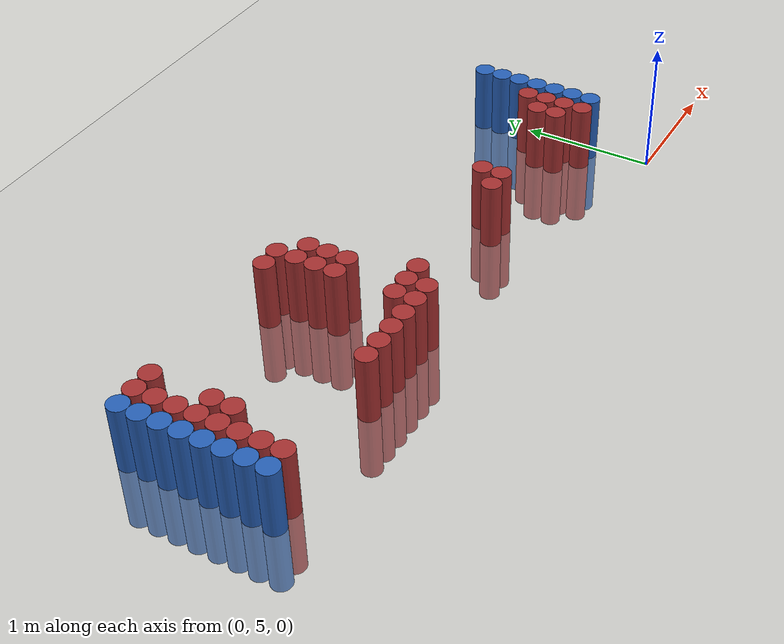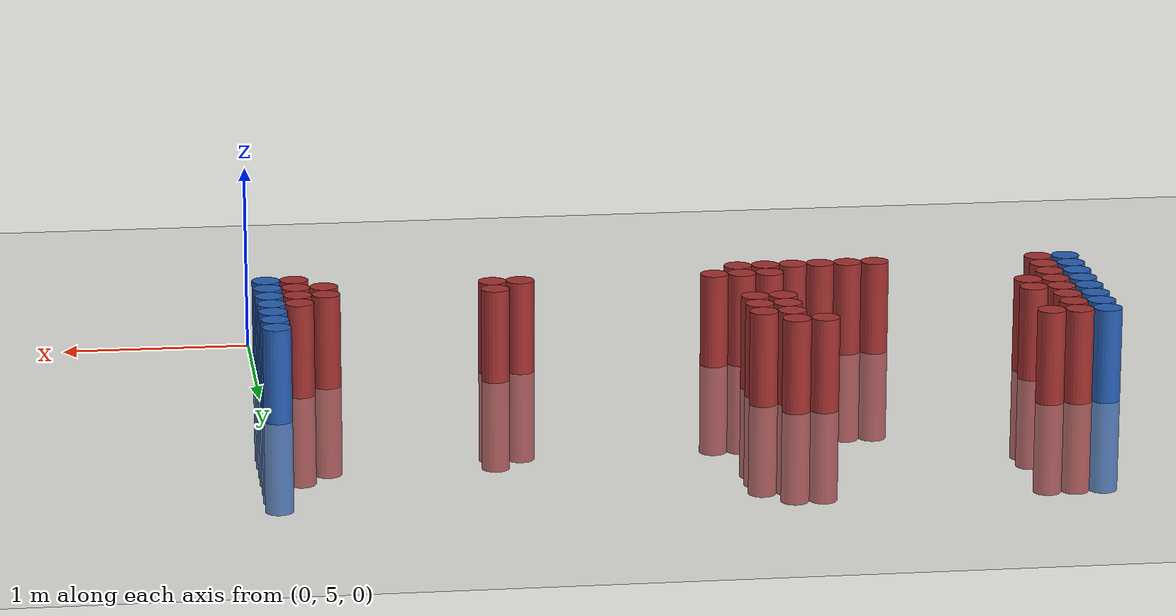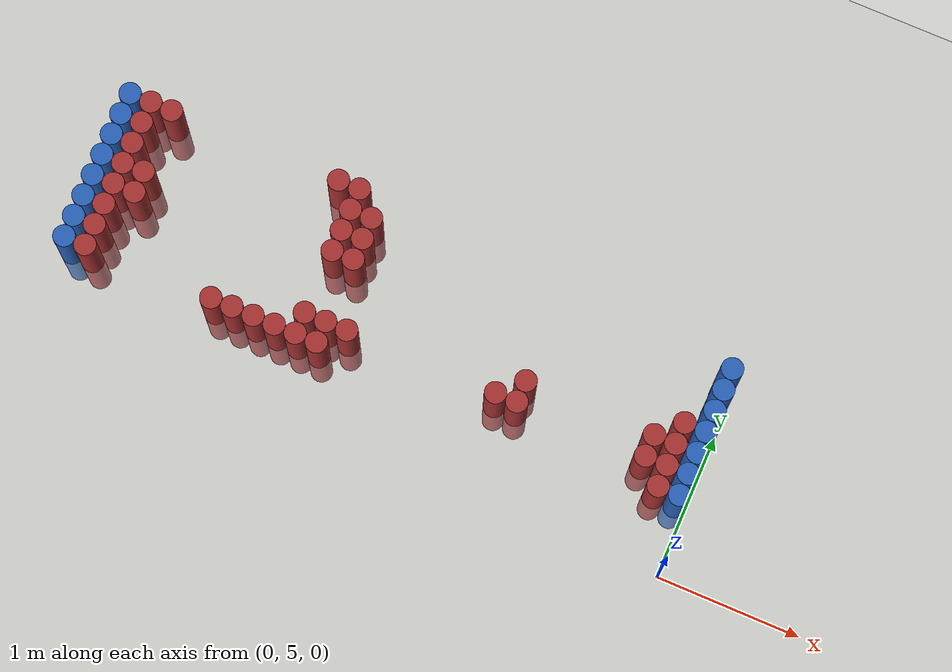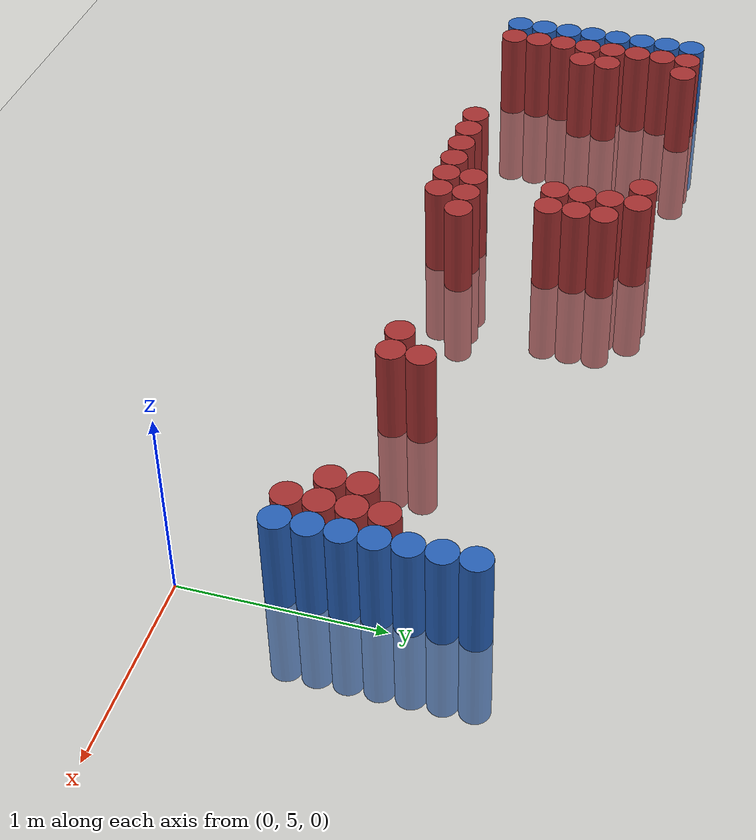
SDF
<sdf version="1.6">
 <world name="default">
  <model name="ground_plane">
   <static>1</static>
   <link name="link">
    <collision name="collision">
     <geometry><plane><normal>0 0 1</normal><size>100 100</size></plane></geometry>
     <surface><friction><ode><mu>100</mu><mu2>50</mu2></ode></friction></surface>
    </collision>
    <visual name="visual">
     <cast_shadows>0</cast_shadows>
     <geometry><plane><normal>0 0 1</normal><size>100 100</size></plane></geometry>
     <material>
      <script><uri>file://media/materials/scripts/gazebo.material</uri><name>Gazebo/Grey</name></script>
     </material>
    </visual>
   </link>
  </model>
  <model name="unit_cylinder_98">
   <static>1</static>
   <pose>-4.425000 5.475000 0.000000 0.000000 0.000000 0.000000</pose>
   <link name="link">
    <inertial>
     <mass>1</mass>
     <inertia><ixx>0.145833</ixx><ixy>0</ixy><ixz>0</ixz><iyy>0.145833</iyy><iyz>0</iyz><izz>0.125</izz></inertia>
    </inertial>
    <collision name="collision">
     <geometry><cylinder><radius>0.075000</radius><length>1</length></cylinder></geometry>
    </collision>
    <visual name="visual">
     <geometry><cylinder><radius>0.075000</radius><length>1</length></cylinder></geometry>
     <material>
      <ambient>0.152000 0.379000 0.720000 1</ambient>
      <diffuse>0.152000 0.379000 0.720000 1</diffuse>
     </material>
     <material>
      <script><name>Gazebo/Grey</name><uri>file://media/materials/scripts/gazebo.material</uri></script>
     </material>
    </visual>
   </link>
  </model>
  <model name="unit_cylinder_99">
   <static>1</static>
   <pose>-4.425000 5.625000 0.000000 0.000000 0.000000 0.000000</pose>
   <link name="link">
    <inertial>
     <mass>1</mass>
     <inertia><ixx>0.145833</ixx><ixy>0</ixy><ixz>0</ixz><iyy>0.145833</iyy><iyz>0</iyz><izz>0.125</izz></inertia>
    </inertial>
    <collision name="collision">
     <geometry><cylinder><radius>0.075000</radius><length>1</length></cylinder></geometry>
    </collision>
    <visual name="visual">
     <geometry><cylinder><radius>0.075000</radius><length>1</length></cylinder></geometry>
     <material>
      <ambient>0.152000 0.379000 0.720000 1</ambient>
      <diffuse>0.152000 0.379000 0.720000 1</diffuse>
     </material>
     <material>
      <script><name>Gazebo/Grey</name><uri>file://media/materials/scripts/gazebo.material</uri></script>
     </material>
    </visual>
   </link>
  </model>
  <model name="unit_cylinder_100">
   <static>1</static>
   <pose>-4.425000 5.775000 0.000000 0.000000 0.000000 0.000000</pose>
   <link name="link">
    <inertial>
     <mass>1</mass>
     <inertia><ixx>0.145833</ixx><ixy>0</ixy><ixz>0</ixz><iyy>0.145833</iyy><iyz>0</iyz><izz>0.125</izz></inertia>
    </inertial>
    <collision name="collision">
     <geometry><cylinder><radius>0.075000</radius><length>1</length></cylinder></geometry>
    </collision>
    <visual name="visual">
     <geometry><cylinder><radius>0.075000</radius><length>1</length></cylinder></geometry>
     <material>
      <ambient>0.152000 0.379000 0.720000 1</ambient>
      <diffuse>0.152000 0.379000 0.720000 1</diffuse>
     </material>
     <material>
      <script><name>Gazebo/Grey</name><uri>file://media/materials/scripts/gazebo.material</uri></script>
     </material>
    </visual>
   </link>
  </model>
  <model name="unit_cylinder_101">
   <static>1</static>
   <pose>-4.425000 5.925000 0.000000 0.000000 0.000000 0.000000</pose>
   <link name="link">
    <inertial>
     <mass>1</mass>
     <inertia><ixx>0.145833</ixx><ixy>0</ixy><ixz>0</ixz><iyy>0.145833</iyy><iyz>0</iyz><izz>0.125</izz></inertia>
    </inertial>
    <collision name="collision">
     <geometry><cylinder><radius>0.075000</radius><length>1</length></cylinder></geometry>
    </collision>
    <visual name="visual">
     <geometry><cylinder><radius>0.075000</radius><length>1</length></cylinder></geometry>
     <material>
      <ambient>0.152000 0.379000 0.720000 1</ambient>
      <diffuse>0.152000 0.379000 0.720000 1</diffuse>
     </material>
     <material>
      <script><name>Gazebo/Grey</name><uri>file://media/materials/scripts/gazebo.material</uri></script>
     </material>
    </visual>
   </link>
  </model>
  <model name="unit_cylinder_102">
   <static>1</static>
   <pose>-4.425000 6.075000 0.000000 0.000000 0.000000 0.000000</pose>
   <link name="link">
    <inertial>
     <mass>1</mass>
     <inertia><ixx>0.145833</ixx><ixy>0</ixy><ixz>0</ixz><iyy>0.145833</iyy><iyz>0</iyz><izz>0.125</izz></inertia>
    </inertial>
    <collision name="collision">
     <geometry><cylinder><radius>0.075000</radius><length>1</length></cylinder></geometry>
    </collision>
    <visual name="visual">
     <geometry><cylinder><radius>0.075000</radius><length>1</length></cylinder></geometry>
     <material>
      <ambient>0.152000 0.379000 0.720000 1</ambient>
      <diffuse>0.152000 0.379000 0.720000 1</diffuse>
     </material>
     <material>
      <script><name>Gazebo/Grey</name><uri>file://media/materials/scripts/gazebo.material</uri></script>
     </material>
    </visual>
   </link>
  </model>
  <model name="unit_cylinder_103">
   <static>1</static>
   <pose>-4.425000 6.225000 0.000000 0.000000 0.000000 0.000000</pose>
   <link name="link">
    <inertial>
     <mass>1</mass>
     <inertia><ixx>0.145833</ixx><ixy>0</ixy><ixz>0</ixz><iyy>0.145833</iyy><iyz>0</iyz><izz>0.125</izz></inertia>
    </inertial>
    <collision name="collision">
     <geometry><cylinder><radius>0.075000</radius><length>1</length></cylinder></geometry>
    </collision>
    <visual name="visual">
     <geometry><cylinder><radius>0.075000</radius><length>1</length></cylinder></geometry>
     <material>
      <ambient>0.152000 0.379000 0.720000 1</ambient>
      <diffuse>0.152000 0.379000 0.720000 1</diffuse>
     </material>
     <material>
      <script><name>Gazebo/Grey</name><uri>file://media/materials/scripts/gazebo.material</uri></script>
     </material>
    </visual>
   </link>
  </model>
  <model name="unit_cylinder_104">
   <static>1</static>
   <pose>-4.425000 6.375000 0.000000 0.000000 0.000000 0.000000</pose>
   <link name="link">
    <inertial>
     <mass>1</mass>
     <inertia><ixx>0.145833</ixx><ixy>0</ixy><ixz>0</ixz><iyy>0.145833</iyy><iyz>0</iyz><izz>0.125</izz></inertia>
    </inertial>
    <collision name="collision">
     <geometry><cylinder><radius>0.075000</radius><length>1</length></cylinder></geometry>
    </collision>
    <visual name="visual">
     <geometry><cylinder><radius>0.075000</radius><length>1</length></cylinder></geometry>
     <material>
      <ambient>0.152000 0.379000 0.720000 1</ambient>
      <diffuse>0.152000 0.379000 0.720000 1</diffuse>
     </material>
     <material>
      <script><name>Gazebo/Grey</name><uri>file://media/materials/scripts/gazebo.material</uri></script>
     </material>
    </visual>
   </link>
  </model>
  <model name="unit_cylinder_105">
   <static>1</static>
   <pose>-4.425000 6.525000 0.000000 0.000000 0.000000 0.000000</pose>
   <link name="link">
    <inertial>
     <mass>1</mass>
     <inertia><ixx>0.145833</ixx><ixy>0</ixy><ixz>0</ixz><iyy>0.145833</iyy><iyz>0</iyz><izz>0.125</izz></inertia>
    </inertial>
    <collision name="collision">
     <geometry><cylinder><radius>0.075000</radius><length>1</length></cylinder></geometry>
    </collision>
    <visual name="visual">
     <geometry><cylinder><radius>0.075000</radius><length>1</length></cylinder></geometry>
     <material>
      <ambient>0.152000 0.379000 0.720000 1</ambient>
      <diffuse>0.152000 0.379000 0.720000 1</diffuse>
     </material>
     <material>
      <script><name>Gazebo/Grey</name><uri>file://media/materials/scripts/gazebo.material</uri></script>
     </material>
    </visual>
   </link>
  </model>
  <model name="unit_cylinder_128">
   <static>1</static>
   <pose>-4.275000 5.475000 0.000000 0.000000 0.000000 0.000000</pose>
   <link name="link">
    <inertial>
     <mass>1</mass>
     <inertia><ixx>0.145833</ixx><ixy>0</ixy><ixz>0</ixz><iyy>0.145833</iyy><iyz>0</iyz><izz>0.125</izz></inertia>
    </inertial>
    <collision name="collision">
     <geometry><cylinder><radius>0.075000</radius><length>1</length></cylinder></geometry>
    </collision>
    <visual name="visual">
     <geometry><cylinder><radius>0.075000</radius><length>1</length></cylinder></geometry>
     <material>
      <ambient>0.648000 0.192000 0.192000 1</ambient>
      <diffuse>0.648000 0.192000 0.192000 1</diffuse>
     </material>
     <material>
      <script><name>Gazebo/Grey</name><uri>file://media/materials/scripts/gazebo.material</uri></script>
     </material>
    </visual>
   </link>
  </model>
  <model name="unit_cylinder_129">
   <static>1</static>
   <pose>-4.275000 5.625000 0.000000 0.000000 0.000000 0.000000</pose>
   <link name="link">
    <inertial>
     <mass>1</mass>
     <inertia><ixx>0.145833</ixx><ixy>0</ixy><ixz>0</ixz><iyy>0.145833</iyy><iyz>0</iyz><izz>0.125</izz></inertia>
    </inertial>
    <collision name="collision">
     <geometry><cylinder><radius>0.075000</radius><length>1</length></cylinder></geometry>
    </collision>
    <visual name="visual">
     <geometry><cylinder><radius>0.075000</radius><length>1</length></cylinder></geometry>
     <material>
      <ambient>0.648000 0.192000 0.192000 1</ambient>
      <diffuse>0.648000 0.192000 0.192000 1</diffuse>
     </material>
     <material>
      <script><name>Gazebo/Grey</name><uri>file://media/materials/scripts/gazebo.material</uri></script>
     </material>
    </visual>
   </link>
  </model>
  <model name="unit_cylinder_130">
   <static>1</static>
   <pose>-4.275000 5.775000 0.000000 0.000000 0.000000 0.000000</pose>
   <link name="link">
    <inertial>
     <mass>1</mass>
     <inertia><ixx>0.145833</ixx><ixy>0</ixy><ixz>0</ixz><iyy>0.145833</iyy><iyz>0</iyz><izz>0.125</izz></inertia>
    </inertial>
    <collision name="collision">
     <geometry><cylinder><radius>0.075000</radius><length>1</length></cylinder></geometry>
    </collision>
    <visual name="visual">
     <geometry><cylinder><radius>0.075000</radius><length>1</length></cylinder></geometry>
     <material>
      <ambient>0.648000 0.192000 0.192000 1</ambient>
      <diffuse>0.648000 0.192000 0.192000 1</diffuse>
     </material>
     <material>
      <script><name>Gazebo/Grey</name><uri>file://media/materials/scripts/gazebo.material</uri></script>
     </material>
    </visual>
   </link>
  </model>
  <model name="unit_cylinder_131">
   <static>1</static>
   <pose>-4.275000 5.925000 0.000000 0.000000 0.000000 0.000000</pose>
   <link name="link">
    <inertial>
     <mass>1</mass>
     <inertia><ixx>0.145833</ixx><ixy>0</ixy><ixz>0</ixz><iyy>0.145833</iyy><iyz>0</iyz><izz>0.125</izz></inertia>
    </inertial>
    <collision name="collision">
     <geometry><cylinder><radius>0.075000</radius><length>1</length></cylinder></geometry>
    </collision>
    <visual name="visual">
     <geometry><cylinder><radius>0.075000</radius><length>1</length></cylinder></geometry>
     <material>
      <ambient>0.648000 0.192000 0.192000 1</ambient>
      <diffuse>0.648000 0.192000 0.192000 1</diffuse>
     </material>
     <material>
      <script><name>Gazebo/Grey</name><uri>file://media/materials/scripts/gazebo.material</uri></script>
     </material>
    </visual>
   </link>
  </model>
  <model name="unit_cylinder_132">
   <static>1</static>
   <pose>-4.275000 6.075000 0.000000 0.000000 0.000000 0.000000</pose>
   <link name="link">
    <inertial>
     <mass>1</mass>
     <inertia><ixx>0.145833</ixx><ixy>0</ixy><ixz>0</ixz><iyy>0.145833</iyy><iyz>0</iyz><izz>0.125</izz></inertia>
    </inertial>
    <collision name="collision">
     <geometry><cylinder><radius>0.075000</radius><length>1</length></cylinder></geometry>
    </collision>
    <visual name="visual">
     <geometry><cylinder><radius>0.075000</radius><length>1</length></cylinder></geometry>
     <material>
      <ambient>0.648000 0.192000 0.192000 1</ambient>
      <diffuse>0.648000 0.192000 0.192000 1</diffuse>
     </material>
     <material>
      <script><name>Gazebo/Grey</name><uri>file://media/materials/scripts/gazebo.material</uri></script>
     </material>
    </visual>
   </link>
  </model>
  <model name="unit_cylinder_133">
   <static>1</static>
   <pose>-4.275000 6.225000 0.000000 0.000000 0.000000 0.000000</pose>
   <link name="link">
    <inertial>
     <mass>1</mass>
     <inertia><ixx>0.145833</ixx><ixy>0</ixy><ixz>0</ixz><iyy>0.145833</iyy><iyz>0</iyz><izz>0.125</izz></inertia>
    </inertial>
    <collision name="collision">
     <geometry><cylinder><radius>0.075000</radius><length>1</length></cylinder></geometry>
    </collision>
    <visual name="visual">
     <geometry><cylinder><radius>0.075000</radius><length>1</length></cylinder></geometry>
     <material>
      <ambient>0.648000 0.192000 0.192000 1</ambient>
      <diffuse>0.648000 0.192000 0.192000 1</diffuse>
     </material>
     <material>
      <script><name>Gazebo/Grey</name><uri>file://media/materials/scripts/gazebo.material</uri></script>
     </material>
    </visual>
   </link>
  </model>
  <model name="unit_cylinder_134">
   <static>1</static>
   <pose>-4.275000 6.375000 0.000000 0.000000 0.000000 0.000000</pose>
   <link name="link">
    <inertial>
     <mass>1</mass>
     <inertia><ixx>0.145833</ixx><ixy>0</ixy><ixz>0</ixz><iyy>0.145833</iyy><iyz>0</iyz><izz>0.125</izz></inertia>
    </inertial>
    <collision name="collision">
     <geometry><cylinder><radius>0.075000</radius><length>1</length></cylinder></geometry>
    </collision>
    <visual name="visual">
     <geometry><cylinder><radius>0.075000</radius><length>1</length></cylinder></geometry>
     <material>
      <ambient>0.648000 0.192000 0.192000 1</ambient>
      <diffuse>0.648000 0.192000 0.192000 1</diffuse>
     </material>
     <material>
      <script><name>Gazebo/Grey</name><uri>file://media/materials/scripts/gazebo.material</uri></script>
     </material>
    </visual>
   </link>
  </model>
  <model name="unit_cylinder_135">
   <static>1</static>
   <pose>-4.275000 6.525000 0.000000 0.000000 0.000000 0.000000</pose>
   <link name="link">
    <inertial>
     <mass>1</mass>
     <inertia><ixx>0.145833</ixx><ixy>0</ixy><ixz>0</ixz><iyy>0.145833</iyy><iyz>0</iyz><izz>0.125</izz></inertia>
    </inertial>
    <collision name="collision">
     <geometry><cylinder><radius>0.075000</radius><length>1</length></cylinder></geometry>
    </collision>
    <visual name="visual">
     <geometry><cylinder><radius>0.075000</radius><length>1</length></cylinder></geometry>
     <material>
      <ambient>0.648000 0.192000 0.192000 1</ambient>
      <diffuse>0.648000 0.192000 0.192000 1</diffuse>
     </material>
     <material>
      <script><name>Gazebo/Grey</name><uri>file://media/materials/scripts/gazebo.material</uri></script>
     </material>
    </visual>
   </link>
  </model>
  <model name="unit_cylinder_139">
   <static>1</static>
   <pose>-4.125000 5.925000 0.000000 0.000000 0.000000 0.000000</pose>
   <link name="link">
    <inertial>
     <mass>1</mass>
     <inertia><ixx>0.145833</ixx><ixy>0</ixy><ixz>0</ixz><iyy>0.145833</iyy><iyz>0</iyz><izz>0.125</izz></inertia>
    </inertial>
    <collision name="collision">
     <geometry><cylinder><radius>0.075000</radius><length>1</length></cylinder></geometry>
    </collision>
    <visual name="visual">
     <geometry><cylinder><radius>0.075000</radius><length>1</length></cylinder></geometry>
     <material>
      <ambient>0.648000 0.192000 0.192000 1</ambient>
      <diffuse>0.648000 0.192000 0.192000 1</diffuse>
     </material>
     <material>
      <script><name>Gazebo/Grey</name><uri>file://media/materials/scripts/gazebo.material</uri></script>
     </material>
    </visual>
   </link>
  </model>
  <model name="unit_cylinder_140">
   <static>1</static>
   <pose>-4.125000 6.075000 0.000000 0.000000 0.000000 0.000000</pose>
   <link name="link">
    <inertial>
     <mass>1</mass>
     <inertia><ixx>0.145833</ixx><ixy>0</ixy><ixz>0</ixz><iyy>0.145833</iyy><iyz>0</iyz><izz>0.125</izz></inertia>
    </inertial>
    <collision name="collision">
     <geometry><cylinder><radius>0.075000</radius><length>1</length></cylinder></geometry>
    </collision>
    <visual name="visual">
     <geometry><cylinder><radius>0.075000</radius><length>1</length></cylinder></geometry>
     <material>
      <ambient>0.648000 0.192000 0.192000 1</ambient>
      <diffuse>0.648000 0.192000 0.192000 1</diffuse>
     </material>
     <material>
      <script><name>Gazebo/Grey</name><uri>file://media/materials/scripts/gazebo.material</uri></script>
     </material>
    </visual>
   </link>
  </model>
  <model name="unit_cylinder_141">
   <static>1</static>
   <pose>-4.125000 6.525000 0.000000 0.000000 0.000000 0.000000</pose>
   <link name="link">
    <inertial>
     <mass>1</mass>
     <inertia><ixx>0.145833</ixx><ixy>0</ixy><ixz>0</ixz><iyy>0.145833</iyy><iyz>0</iyz><izz>0.125</izz></inertia>
    </inertial>
    <collision name="collision">
     <geometry><cylinder><radius>0.075000</radius><length>1</length></cylinder></geometry>
    </collision>
    <visual name="visual">
     <geometry><cylinder><radius>0.075000</radius><length>1</length></cylinder></geometry>
     <material>
      <ambient>0.648000 0.192000 0.192000 1</ambient>
      <diffuse>0.648000 0.192000 0.192000 1</diffuse>
     </material>
     <material>
      <script><name>Gazebo/Grey</name><uri>file://media/materials/scripts/gazebo.material</uri></script>
     </material>
    </visual>
   </link>
  </model>
  <model name="unit_cylinder_173">
   <static>1</static>
   <pose>-3.375000 5.475000 0.000000 0.000000 0.000000 0.000000</pose>
   <link name="link">
    <inertial>
     <mass>1</mass>
     <inertia><ixx>0.145833</ixx><ixy>0</ixy><ixz>0</ixz><iyy>0.145833</iyy><iyz>0</iyz><izz>0.125</izz></inertia>
    </inertial>
    <collision name="collision">
     <geometry><cylinder><radius>0.075000</radius><length>1</length></cylinder></geometry>
    </collision>
    <visual name="visual">
     <geometry><cylinder><radius>0.075000</radius><length>1</length></cylinder></geometry>
     <material>
      <ambient>0.648000 0.192000 0.192000 1</ambient>
      <diffuse>0.648000 0.192000 0.192000 1</diffuse>
     </material>
     <material>
      <script><name>Gazebo/Grey</name><uri>file://media/materials/scripts/gazebo.material</uri></script>
     </material>
    </visual>
   </link>
  </model>
  <model name="unit_cylinder_180">
   <static>1</static>
   <pose>-3.225000 5.475000 0.000000 0.000000 0.000000 0.000000</pose>
   <link name="link">
    <inertial>
     <mass>1</mass>
     <inertia><ixx>0.145833</ixx><ixy>0</ixy><ixz>0</ixz><iyy>0.145833</iyy><iyz>0</iyz><izz>0.125</izz></inertia>
    </inertial>
    <collision name="collision">
     <geometry><cylinder><radius>0.075000</radius><length>1</length></cylinder></geometry>
    </collision>
    <visual name="visual">
     <geometry><cylinder><radius>0.075000</radius><length>1</length></cylinder></geometry>
     <material>
      <ambient>0.648000 0.192000 0.192000 1</ambient>
      <diffuse>0.648000 0.192000 0.192000 1</diffuse>
     </material>
     <material>
      <script><name>Gazebo/Grey</name><uri>file://media/materials/scripts/gazebo.material</uri></script>
     </material>
    </visual>
   </link>
  </model>
  <model name="unit_cylinder_188">
   <static>1</static>
   <pose>-3.075000 5.475000 0.000000 0.000000 0.000000 0.000000</pose>
   <link name="link">
    <inertial>
     <mass>1</mass>
     <inertia><ixx>0.145833</ixx><ixy>0</ixy><ixz>0</ixz><iyy>0.145833</iyy><iyz>0</iyz><izz>0.125</izz></inertia>
    </inertial>
    <collision name="collision">
     <geometry><cylinder><radius>0.075000</radius><length>1</length></cylinder></geometry>
    </collision>
    <visual name="visual">
     <geometry><cylinder><radius>0.075000</radius><length>1</length></cylinder></geometry>
     <material>
      <ambient>0.648000 0.192000 0.192000 1</ambient>
      <diffuse>0.648000 0.192000 0.192000 1</diffuse>
     </material>
     <material>
      <script><name>Gazebo/Grey</name><uri>file://media/materials/scripts/gazebo.material</uri></script>
     </material>
    </visual>
   </link>
  </model>
  <model name="unit_cylinder_194">
   <static>1</static>
   <pose>-2.925000 5.475000 0.000000 0.000000 0.000000 0.000000</pose>
   <link name="link">
    <inertial>
     <mass>1</mass>
     <inertia><ixx>0.145833</ixx><ixy>0</ixy><ixz>0</ixz><iyy>0.145833</iyy><iyz>0</iyz><izz>0.125</izz></inertia>
    </inertial>
    <collision name="collision">
     <geometry><cylinder><radius>0.075000</radius><length>1</length></cylinder></geometry>
    </collision>
    <visual name="visual">
     <geometry><cylinder><radius>0.075000</radius><length>1</length></cylinder></geometry>
     <material>
      <ambient>0.648000 0.192000 0.192000 1</ambient>
      <diffuse>0.648000 0.192000 0.192000 1</diffuse>
     </material>
     <material>
      <script><name>Gazebo/Grey</name><uri>file://media/materials/scripts/gazebo.material</uri></script>
     </material>
    </visual>
   </link>
  </model>
  <model name="unit_cylinder_195">
   <static>1</static>
   <pose>-2.925000 6.525000 0.000000 0.000000 0.000000 0.000000</pose>
   <link name="link">
    <inertial>
     <mass>1</mass>
     <inertia><ixx>0.145833</ixx><ixy>0</ixy><ixz>0</ixz><iyy>0.145833</iyy><iyz>0</iyz><izz>0.125</izz></inertia>
    </inertial>
    <collision name="collision">
     <geometry><cylinder><radius>0.075000</radius><length>1</length></cylinder></geometry>
    </collision>
    <visual name="visual">
     <geometry><cylinder><radius>0.075000</radius><length>1</length></cylinder></geometry>
     <material>
      <ambient>0.648000 0.192000 0.192000 1</ambient>
      <diffuse>0.648000 0.192000 0.192000 1</diffuse>
     </material>
     <material>
      <script><name>Gazebo/Grey</name><uri>file://media/materials/scripts/gazebo.material</uri></script>
     </material>
    </visual>
   </link>
  </model>
  <model name="unit_cylinder_205">
   <static>1</static>
   <pose>-2.775000 5.475000 0.000000 0.000000 0.000000 0.000000</pose>
   <link name="link">
    <inertial>
     <mass>1</mass>
     <inertia><ixx>0.145833</ixx><ixy>0</ixy><ixz>0</ixz><iyy>0.145833</iyy><iyz>0</iyz><izz>0.125</izz></inertia>
    </inertial>
    <collision name="collision">
     <geometry><cylinder><radius>0.075000</radius><length>1</length></cylinder></geometry>
    </collision>
    <visual name="visual">
     <geometry><cylinder><radius>0.075000</radius><length>1</length></cylinder></geometry>
     <material>
      <ambient>0.648000 0.192000 0.192000 1</ambient>
      <diffuse>0.648000 0.192000 0.192000 1</diffuse>
     </material>
     <material>
      <script><name>Gazebo/Grey</name><uri>file://media/materials/scripts/gazebo.material</uri></script>
     </material>
    </visual>
   </link>
  </model>
  <model name="unit_cylinder_206">
   <static>1</static>
   <pose>-2.775000 5.625000 0.000000 0.000000 0.000000 0.000000</pose>
   <link name="link">
    <inertial>
     <mass>1</mass>
     <inertia><ixx>0.145833</ixx><ixy>0</ixy><ixz>0</ixz><iyy>0.145833</iyy><iyz>0</iyz><izz>0.125</izz></inertia>
    </inertial>
    <collision name="collision">
     <geometry><cylinder><radius>0.075000</radius><length>1</length></cylinder></geometry>
    </collision>
    <visual name="visual">
     <geometry><cylinder><radius>0.075000</radius><length>1</length></cylinder></geometry>
     <material>
      <ambient>0.648000 0.192000 0.192000 1</ambient>
      <diffuse>0.648000 0.192000 0.192000 1</diffuse>
     </material>
     <material>
      <script><name>Gazebo/Grey</name><uri>file://media/materials/scripts/gazebo.material</uri></script>
     </material>
    </visual>
   </link>
  </model>
  <model name="unit_cylinder_207">
   <static>1</static>
   <pose>-2.775000 6.075000 0.000000 0.000000 0.000000 0.000000</pose>
   <link name="link">
    <inertial>
     <mass>1</mass>
     <inertia><ixx>0.145833</ixx><ixy>0</ixy><ixz>0</ixz><iyy>0.145833</iyy><iyz>0</iyz><izz>0.125</izz></inertia>
    </inertial>
    <collision name="collision">
     <geometry><cylinder><radius>0.075000</radius><length>1</length></cylinder></geometry>
    </collision>
    <visual name="visual">
     <geometry><cylinder><radius>0.075000</radius><length>1</length></cylinder></geometry>
     <material>
      <ambient>0.648000 0.192000 0.192000 1</ambient>
      <diffuse>0.648000 0.192000 0.192000 1</diffuse>
     </material>
     <material>
      <script><name>Gazebo/Grey</name><uri>file://media/materials/scripts/gazebo.material</uri></script>
     </material>
    </visual>
   </link>
  </model>
  <model name="unit_cylinder_208">
   <static>1</static>
   <pose>-2.775000 6.225000 0.000000 0.000000 0.000000 0.000000</pose>
   <link name="link">
    <inertial>
     <mass>1</mass>
     <inertia><ixx>0.145833</ixx><ixy>0</ixy><ixz>0</ixz><iyy>0.145833</iyy><iyz>0</iyz><izz>0.125</izz></inertia>
    </inertial>
    <collision name="collision">
     <geometry><cylinder><radius>0.075000</radius><length>1</length></cylinder></geometry>
    </collision>
    <visual name="visual">
     <geometry><cylinder><radius>0.075000</radius><length>1</length></cylinder></geometry>
     <material>
      <ambient>0.648000 0.192000 0.192000 1</ambient>
      <diffuse>0.648000 0.192000 0.192000 1</diffuse>
     </material>
     <material>
      <script><name>Gazebo/Grey</name><uri>file://media/materials/scripts/gazebo.material</uri></script>
     </material>
    </visual>
   </link>
  </model>
  <model name="unit_cylinder_209">
   <static>1</static>
   <pose>-2.775000 6.375000 0.000000 0.000000 0.000000 0.000000</pose>
   <link name="link">
    <inertial>
     <mass>1</mass>
     <inertia><ixx>0.145833</ixx><ixy>0</ixy><ixz>0</ixz><iyy>0.145833</iyy><iyz>0</iyz><izz>0.125</izz></inertia>
    </inertial>
    <collision name="collision">
     <geometry><cylinder><radius>0.075000</radius><length>1</length></cylinder></geometry>
    </collision>
    <visual name="visual">
     <geometry><cylinder><radius>0.075000</radius><length>1</length></cylinder></geometry>
     <material>
      <ambient>0.648000 0.192000 0.192000 1</ambient>
      <diffuse>0.648000 0.192000 0.192000 1</diffuse>
     </material>
     <material>
      <script><name>Gazebo/Grey</name><uri>file://media/materials/scripts/gazebo.material</uri></script>
     </material>
    </visual>
   </link>
  </model>
  <model name="unit_cylinder_210">
   <static>1</static>
   <pose>-2.775000 6.525000 0.000000 0.000000 0.000000 0.000000</pose>
   <link name="link">
    <inertial>
     <mass>1</mass>
     <inertia><ixx>0.145833</ixx><ixy>0</ixy><ixz>0</ixz><iyy>0.145833</iyy><iyz>0</iyz><izz>0.125</izz></inertia>
    </inertial>
    <collision name="collision">
     <geometry><cylinder><radius>0.075000</radius><length>1</length></cylinder></geometry>
    </collision>
    <visual name="visual">
     <geometry><cylinder><radius>0.075000</radius><length>1</length></cylinder></geometry>
     <material>
      <ambient>0.648000 0.192000 0.192000 1</ambient>
      <diffuse>0.648000 0.192000 0.192000 1</diffuse>
     </material>
     <material>
      <script><name>Gazebo/Grey</name><uri>file://media/materials/scripts/gazebo.material</uri></script>
     </material>
    </visual>
   </link>
  </model>
  <model name="unit_cylinder_214">
   <static>1</static>
   <pose>-2.625000 5.475000 0.000000 0.000000 0.000000 0.000000</pose>
   <link name="link">
    <inertial>
     <mass>1</mass>
     <inertia><ixx>0.145833</ixx><ixy>0</ixy><ixz>0</ixz><iyy>0.145833</iyy><iyz>0</iyz><izz>0.125</izz></inertia>
    </inertial>
    <collision name="collision">
     <geometry><cylinder><radius>0.075000</radius><length>1</length></cylinder></geometry>
    </collision>
    <visual name="visual">
     <geometry><cylinder><radius>0.075000</radius><length>1</length></cylinder></geometry>
     <material>
      <ambient>0.648000 0.192000 0.192000 1</ambient>
      <diffuse>0.648000 0.192000 0.192000 1</diffuse>
     </material>
     <material>
      <script><name>Gazebo/Grey</name><uri>file://media/materials/scripts/gazebo.material</uri></script>
     </material>
    </visual>
   </link>
  </model>
  <model name="unit_cylinder_215">
   <static>1</static>
   <pose>-2.625000 5.625000 0.000000 0.000000 0.000000 0.000000</pose>
   <link name="link">
    <inertial>
     <mass>1</mass>
     <inertia><ixx>0.145833</ixx><ixy>0</ixy><ixz>0</ixz><iyy>0.145833</iyy><iyz>0</iyz><izz>0.125</izz></inertia>
    </inertial>
    <collision name="collision">
     <geometry><cylinder><radius>0.075000</radius><length>1</length></cylinder></geometry>
    </collision>
    <visual name="visual">
     <geometry><cylinder><radius>0.075000</radius><length>1</length></cylinder></geometry>
     <material>
      <ambient>0.648000 0.192000 0.192000 1</ambient>
      <diffuse>0.648000 0.192000 0.192000 1</diffuse>
     </material>
     <material>
      <script><name>Gazebo/Grey</name><uri>file://media/materials/scripts/gazebo.material</uri></script>
     </material>
    </visual>
   </link>
  </model>
  <model name="unit_cylinder_216">
   <static>1</static>
   <pose>-2.625000 6.075000 0.000000 0.000000 0.000000 0.000000</pose>
   <link name="link">
    <inertial>
     <mass>1</mass>
     <inertia><ixx>0.145833</ixx><ixy>0</ixy><ixz>0</ixz><iyy>0.145833</iyy><iyz>0</iyz><izz>0.125</izz></inertia>
    </inertial>
    <collision name="collision">
     <geometry><cylinder><radius>0.075000</radius><length>1</length></cylinder></geometry>
    </collision>
    <visual name="visual">
     <geometry><cylinder><radius>0.075000</radius><length>1</length></cylinder></geometry>
     <material>
      <ambient>0.648000 0.192000 0.192000 1</ambient>
      <diffuse>0.648000 0.192000 0.192000 1</diffuse>
     </material>
     <material>
      <script><name>Gazebo/Grey</name><uri>file://media/materials/scripts/gazebo.material</uri></script>
     </material>
    </visual>
   </link>
  </model>
  <model name="unit_cylinder_217">
   <static>1</static>
   <pose>-2.625000 6.225000 0.000000 0.000000 0.000000 0.000000</pose>
   <link name="link">
    <inertial>
     <mass>1</mass>
     <inertia><ixx>0.145833</ixx><ixy>0</ixy><ixz>0</ixz><iyy>0.145833</iyy><iyz>0</iyz><izz>0.125</izz></inertia>
    </inertial>
    <collision name="collision">
     <geometry><cylinder><radius>0.075000</radius><length>1</length></cylinder></geometry>
    </collision>
    <visual name="visual">
     <geometry><cylinder><radius>0.075000</radius><length>1</length></cylinder></geometry>
     <material>
      <ambient>0.648000 0.192000 0.192000 1</ambient>
      <diffuse>0.648000 0.192000 0.192000 1</diffuse>
     </material>
     <material>
      <script><name>Gazebo/Grey</name><uri>file://media/materials/scripts/gazebo.material</uri></script>
     </material>
    </visual>
   </link>
  </model>
  <model name="unit_cylinder_218">
   <static>1</static>
   <pose>-2.625000 6.375000 0.000000 0.000000 0.000000 0.000000</pose>
   <link name="link">
    <inertial>
     <mass>1</mass>
     <inertia><ixx>0.145833</ixx><ixy>0</ixy><ixz>0</ixz><iyy>0.145833</iyy><iyz>0</iyz><izz>0.125</izz></inertia>
    </inertial>
    <collision name="collision">
     <geometry><cylinder><radius>0.075000</radius><length>1</length></cylinder></geometry>
    </collision>
    <visual name="visual">
     <geometry><cylinder><radius>0.075000</radius><length>1</length></cylinder></geometry>
     <material>
      <ambient>0.648000 0.192000 0.192000 1</ambient>
      <diffuse>0.648000 0.192000 0.192000 1</diffuse>
     </material>
     <material>
      <script><name>Gazebo/Grey</name><uri>file://media/materials/scripts/gazebo.material</uri></script>
     </material>
    </visual>
   </link>
  </model>
  <model name="unit_cylinder_222">
   <static>1</static>
   <pose>-2.475000 5.625000 0.000000 0.000000 0.000000 0.000000</pose>
   <link name="link">
    <inertial>
     <mass>1</mass>
     <inertia><ixx>0.145833</ixx><ixy>0</ixy><ixz>0</ixz><iyy>0.145833</iyy><iyz>0</iyz><izz>0.125</izz></inertia>
    </inertial>
    <collision name="collision">
     <geometry><cylinder><radius>0.075000</radius><length>1</length></cylinder></geometry>
    </collision>
    <visual name="visual">
     <geometry><cylinder><radius>0.075000</radius><length>1</length></cylinder></geometry>
     <material>
      <ambient>0.648000 0.192000 0.192000 1</ambient>
      <diffuse>0.648000 0.192000 0.192000 1</diffuse>
     </material>
     <material>
      <script><name>Gazebo/Grey</name><uri>file://media/materials/scripts/gazebo.material</uri></script>
     </material>
    </visual>
   </link>
  </model>
  <model name="unit_cylinder_240">
   <static>1</static>
   <pose>-1.425000 5.625000 0.000000 0.000000 0.000000 0.000000</pose>
   <link name="link">
    <inertial>
     <mass>1</mass>
     <inertia><ixx>0.145833</ixx><ixy>0</ixy><ixz>0</ixz><iyy>0.145833</iyy><iyz>0</iyz><izz>0.125</izz></inertia>
    </inertial>
    <collision name="collision">
     <geometry><cylinder><radius>0.075000</radius><length>1</length></cylinder></geometry>
    </collision>
    <visual name="visual">
     <geometry><cylinder><radius>0.075000</radius><length>1</length></cylinder></geometry>
     <material>
      <ambient>0.648000 0.192000 0.192000 1</ambient>
      <diffuse>0.648000 0.192000 0.192000 1</diffuse>
     </material>
     <material>
      <script><name>Gazebo/Grey</name><uri>file://media/materials/scripts/gazebo.material</uri></script>
     </material>
    </visual>
   </link>
  </model>
  <model name="unit_cylinder_244">
   <static>1</static>
   <pose>-1.275000 5.625000 0.000000 0.000000 0.000000 0.000000</pose>
   <link name="link">
    <inertial>
     <mass>1</mass>
     <inertia><ixx>0.145833</ixx><ixy>0</ixy><ixz>0</ixz><iyy>0.145833</iyy><iyz>0</iyz><izz>0.125</izz></inertia>
    </inertial>
    <collision name="collision">
     <geometry><cylinder><radius>0.075000</radius><length>1</length></cylinder></geometry>
    </collision>
    <visual name="visual">
     <geometry><cylinder><radius>0.075000</radius><length>1</length></cylinder></geometry>
     <material>
      <ambient>0.648000 0.192000 0.192000 1</ambient>
      <diffuse>0.648000 0.192000 0.192000 1</diffuse>
     </material>
     <material>
      <script><name>Gazebo/Grey</name><uri>file://media/materials/scripts/gazebo.material</uri></script>
     </material>
    </visual>
   </link>
  </model>
  <model name="unit_cylinder_245">
   <static>1</static>
   <pose>-1.275000 5.775000 0.000000 0.000000 0.000000 0.000000</pose>
   <link name="link">
    <inertial>
     <mass>1</mass>
     <inertia><ixx>0.145833</ixx><ixy>0</ixy><ixz>0</ixz><iyy>0.145833</iyy><iyz>0</iyz><izz>0.125</izz></inertia>
    </inertial>
    <collision name="collision">
     <geometry><cylinder><radius>0.075000</radius><length>1</length></cylinder></geometry>
    </collision>
    <visual name="visual">
     <geometry><cylinder><radius>0.075000</radius><length>1</length></cylinder></geometry>
     <material>
      <ambient>0.648000 0.192000 0.192000 1</ambient>
      <diffuse>0.648000 0.192000 0.192000 1</diffuse>
     </material>
     <material>
      <script><name>Gazebo/Grey</name><uri>file://media/materials/scripts/gazebo.material</uri></script>
     </material>
    </visual>
   </link>
  </model>
  <model name="unit_cylinder_252">
   <static>1</static>
   <pose>-0.375000 5.625000 0.000000 0.000000 0.000000 0.000000</pose>
   <link name="link">
    <inertial>
     <mass>1</mass>
     <inertia><ixx>0.145833</ixx><ixy>0</ixy><ixz>0</ixz><iyy>0.145833</iyy><iyz>0</iyz><izz>0.125</izz></inertia>
    </inertial>
    <collision name="collision">
     <geometry><cylinder><radius>0.075000</radius><length>1</length></cylinder></geometry>
    </collision>
    <visual name="visual">
     <geometry><cylinder><radius>0.075000</radius><length>1</length></cylinder></geometry>
     <material>
      <ambient>0.648000 0.192000 0.192000 1</ambient>
      <diffuse>0.648000 0.192000 0.192000 1</diffuse>
     </material>
     <material>
      <script><name>Gazebo/Grey</name><uri>file://media/materials/scripts/gazebo.material</uri></script>
     </material>
    </visual>
   </link>
  </model>
  <model name="unit_cylinder_253">
   <static>1</static>
   <pose>-0.375000 5.775000 0.000000 0.000000 0.000000 0.000000</pose>
   <link name="link">
    <inertial>
     <mass>1</mass>
     <inertia><ixx>0.145833</ixx><ixy>0</ixy><ixz>0</ixz><iyy>0.145833</iyy><iyz>0</iyz><izz>0.125</izz></inertia>
    </inertial>
    <collision name="collision">
     <geometry><cylinder><radius>0.075000</radius><length>1</length></cylinder></geometry>
    </collision>
    <visual name="visual">
     <geometry><cylinder><radius>0.075000</radius><length>1</length></cylinder></geometry>
     <material>
      <ambient>0.648000 0.192000 0.192000 1</ambient>
      <diffuse>0.648000 0.192000 0.192000 1</diffuse>
     </material>
     <material>
      <script><name>Gazebo/Grey</name><uri>file://media/materials/scripts/gazebo.material</uri></script>
     </material>
    </visual>
   </link>
  </model>
  <model name="unit_cylinder_269">
   <static>1</static>
   <pose>-0.225000 5.475000 0.000000 0.000000 0.000000 0.000000</pose>
   <link name="link">
    <inertial>
     <mass>1</mass>
     <inertia><ixx>0.145833</ixx><ixy>0</ixy><ixz>0</ixz><iyy>0.145833</iyy><iyz>0</iyz><izz>0.125</izz></inertia>
    </inertial>
    <collision name="collision">
     <geometry><cylinder><radius>0.075000</radius><length>1</length></cylinder></geometry>
    </collision>
    <visual name="visual">
     <geometry><cylinder><radius>0.075000</radius><length>1</length></cylinder></geometry>
     <material>
      <ambient>0.648000 0.192000 0.192000 1</ambient>
      <diffuse>0.648000 0.192000 0.192000 1</diffuse>
     </material>
     <material>
      <script><name>Gazebo/Grey</name><uri>file://media/materials/scripts/gazebo.material</uri></script>
     </material>
    </visual>
   </link>
  </model>
  <model name="unit_cylinder_270">
   <static>1</static>
   <pose>-0.225000 5.625000 0.000000 0.000000 0.000000 0.000000</pose>
   <link name="link">
    <inertial>
     <mass>1</mass>
     <inertia><ixx>0.145833</ixx><ixy>0</ixy><ixz>0</ixz><iyy>0.145833</iyy><iyz>0</iyz><izz>0.125</izz></inertia>
    </inertial>
    <collision name="collision">
     <geometry><cylinder><radius>0.075000</radius><length>1</length></cylinder></geometry>
    </collision>
    <visual name="visual">
     <geometry><cylinder><radius>0.075000</radius><length>1</length></cylinder></geometry>
     <material>
      <ambient>0.648000 0.192000 0.192000 1</ambient>
      <diffuse>0.648000 0.192000 0.192000 1</diffuse>
     </material>
     <material>
      <script><name>Gazebo/Grey</name><uri>file://media/materials/scripts/gazebo.material</uri></script>
     </material>
    </visual>
   </link>
  </model>
  <model name="unit_cylinder_271">
   <static>1</static>
   <pose>-0.225000 5.775000 0.000000 0.000000 0.000000 0.000000</pose>
   <link name="link">
    <inertial>
     <mass>1</mass>
     <inertia><ixx>0.145833</ixx><ixy>0</ixy><ixz>0</ixz><iyy>0.145833</iyy><iyz>0</iyz><izz>0.125</izz></inertia>
    </inertial>
    <collision name="collision">
     <geometry><cylinder><radius>0.075000</radius><length>1</length></cylinder></geometry>
    </collision>
    <visual name="visual">
     <geometry><cylinder><radius>0.075000</radius><length>1</length></cylinder></geometry>
     <material>
      <ambient>0.648000 0.192000 0.192000 1</ambient>
      <diffuse>0.648000 0.192000 0.192000 1</diffuse>
     </material>
     <material>
      <script><name>Gazebo/Grey</name><uri>file://media/materials/scripts/gazebo.material</uri></script>
     </material>
    </visual>
   </link>
  </model>
  <model name="unit_cylinder_272">
   <static>1</static>
   <pose>-0.225000 5.925000 0.000000 0.000000 0.000000 0.000000</pose>
   <link name="link">
    <inertial>
     <mass>1</mass>
     <inertia><ixx>0.145833</ixx><ixy>0</ixy><ixz>0</ixz><iyy>0.145833</iyy><iyz>0</iyz><izz>0.125</izz></inertia>
    </inertial>
    <collision name="collision">
     <geometry><cylinder><radius>0.075000</radius><length>1</length></cylinder></geometry>
    </collision>
    <visual name="visual">
     <geometry><cylinder><radius>0.075000</radius><length>1</length></cylinder></geometry>
     <material>
      <ambient>0.648000 0.192000 0.192000 1</ambient>
      <diffuse>0.648000 0.192000 0.192000 1</diffuse>
     </material>
     <material>
      <script><name>Gazebo/Grey</name><uri>file://media/materials/scripts/gazebo.material</uri></script>
     </material>
    </visual>
   </link>
  </model>
  <model name="unit_cylinder_287">
   <static>1</static>
   <pose>-0.075000 5.475000 0.000000 0.000000 0.000000 0.000000</pose>
   <link name="link">
    <inertial>
     <mass>1</mass>
     <inertia><ixx>0.145833</ixx><ixy>0</ixy><ixz>0</ixz><iyy>0.145833</iyy><iyz>0</iyz><izz>0.125</izz></inertia>
    </inertial>
    <collision name="collision">
     <geometry><cylinder><radius>0.075000</radius><length>1</length></cylinder></geometry>
    </collision>
    <visual name="visual">
     <geometry><cylinder><radius>0.075000</radius><length>1</length></cylinder></geometry>
     <material>
      <ambient>0.152000 0.379000 0.720000 1</ambient>
      <diffuse>0.152000 0.379000 0.720000 1</diffuse>
     </material>
     <material>
      <script><name>Gazebo/Grey</name><uri>file://media/materials/scripts/gazebo.material</uri></script>
     </material>
    </visual>
   </link>
  </model>
  <model name="unit_cylinder_288">
   <static>1</static>
   <pose>-0.075000 5.625000 0.000000 0.000000 0.000000 0.000000</pose>
   <link name="link">
    <inertial>
     <mass>1</mass>
     <inertia><ixx>0.145833</ixx><ixy>0</ixy><ixz>0</ixz><iyy>0.145833</iyy><iyz>0</iyz><izz>0.125</izz></inertia>
    </inertial>
    <collision name="collision">
     <geometry><cylinder><radius>0.075000</radius><length>1</length></cylinder></geometry>
    </collision>
    <visual name="visual">
     <geometry><cylinder><radius>0.075000</radius><length>1</length></cylinder></geometry>
     <material>
      <ambient>0.152000 0.379000 0.720000 1</ambient>
      <diffuse>0.152000 0.379000 0.720000 1</diffuse>
     </material>
     <material>
      <script><name>Gazebo/Grey</name><uri>file://media/materials/scripts/gazebo.material</uri></script>
     </material>
    </visual>
   </link>
  </model>
  <model name="unit_cylinder_289">
   <static>1</static>
   <pose>-0.075000 5.775000 0.000000 0.000000 0.000000 0.000000</pose>
   <link name="link">
    <inertial>
     <mass>1</mass>
     <inertia><ixx>0.145833</ixx><ixy>0</ixy><ixz>0</ixz><iyy>0.145833</iyy><iyz>0</iyz><izz>0.125</izz></inertia>
    </inertial>
    <collision name="collision">
     <geometry><cylinder><radius>0.075000</radius><length>1</length></cylinder></geometry>
    </collision>
    <visual name="visual">
     <geometry><cylinder><radius>0.075000</radius><length>1</length></cylinder></geometry>
     <material>
      <ambient>0.152000 0.379000 0.720000 1</ambient>
      <diffuse>0.152000 0.379000 0.720000 1</diffuse>
     </material>
     <material>
      <script><name>Gazebo/Grey</name><uri>file://media/materials/scripts/gazebo.material</uri></script>
     </material>
    </visual>
   </link>
  </model>
  <model name="unit_cylinder_290">
   <static>1</static>
   <pose>-0.075000 5.925000 0.000000 0.000000 0.000000 0.000000</pose>
   <link name="link">
    <inertial>
     <mass>1</mass>
     <inertia><ixx>0.145833</ixx><ixy>0</ixy><ixz>0</ixz><iyy>0.145833</iyy><iyz>0</iyz><izz>0.125</izz></inertia>
    </inertial>
    <collision name="collision">
     <geometry><cylinder><radius>0.075000</radius><length>1</length></cylinder></geometry>
    </collision>
    <visual name="visual">
     <geometry><cylinder><radius>0.075000</radius><length>1</length></cylinder></geometry>
     <material>
      <ambient>0.152000 0.379000 0.720000 1</ambient>
      <diffuse>0.152000 0.379000 0.720000 1</diffuse>
     </material>
     <material>
      <script><name>Gazebo/Grey</name><uri>file://media/materials/scripts/gazebo.material</uri></script>
     </material>
    </visual>
   </link>
  </model>
  <model name="unit_cylinder_291">
   <static>1</static>
   <pose>-0.075000 6.075000 0.000000 0.000000 0.000000 0.000000</pose>
   <link name="link">
    <inertial>
     <mass>1</mass>
     <inertia><ixx>0.145833</ixx><ixy>0</ixy><ixz>0</ixz><iyy>0.145833</iyy><iyz>0</iyz><izz>0.125</izz></inertia>
    </inertial>
    <collision name="collision">
     <geometry><cylinder><radius>0.075000</radius><length>1</length></cylinder></geometry>
    </collision>
    <visual name="visual">
     <geometry><cylinder><radius>0.075000</radius><length>1</length></cylinder></geometry>
     <material>
      <ambient>0.152000 0.379000 0.720000 1</ambient>
      <diffuse>0.152000 0.379000 0.720000 1</diffuse>
     </material>
     <material>
      <script><name>Gazebo/Grey</name><uri>file://media/materials/scripts/gazebo.material</uri></script>
     </material>
    </visual>
   </link>
  </model>
  <model name="unit_cylinder_292">
   <static>1</static>
   <pose>-0.075000 6.225000 0.000000 0.000000 0.000000 0.000000</pose>
   <link name="link">
    <inertial>
     <mass>1</mass>
     <inertia><ixx>0.145833</ixx><ixy>0</ixy><ixz>0</ixz><iyy>0.145833</iyy><iyz>0</iyz><izz>0.125</izz></inertia>
    </inertial>
    <collision name="collision">
     <geometry><cylinder><radius>0.075000</radius><length>1</length></cylinder></geometry>
    </collision>
    <visual name="visual">
     <geometry><cylinder><radius>0.075000</radius><length>1</length></cylinder></geometry>
     <material>
      <ambient>0.152000 0.379000 0.720000 1</ambient>
      <diffuse>0.152000 0.379000 0.720000 1</diffuse>
     </material>
     <material>
      <script><name>Gazebo/Grey</name><uri>file://media/materials/scripts/gazebo.material</uri></script>
     </material>
    </visual>
   </link>
  </model>
  <model name="unit_cylinder_293">
   <static>1</static>
   <pose>-0.075000 6.375000 0.000000 0.000000 0.000000 0.000000</pose>
   <link name="link">
    <inertial>
     <mass>1</mass>
     <inertia><ixx>0.145833</ixx><ixy>0</ixy><ixz>0</ixz><iyy>0.145833</iyy><iyz>0</iyz><izz>0.125</izz></inertia>
    </inertial>
    <collision name="collision">
     <geometry><cylinder><radius>0.075000</radius><length>1</length></cylinder></geometry>
    </collision>
    <visual name="visual">
     <geometry><cylinder><radius>0.075000</radius><length>1</length></cylinder></geometry>
     <material>
      <ambient>0.152000 0.379000 0.720000 1</ambient>
      <diffuse>0.152000 0.379000 0.720000 1</diffuse>
     </material>
     <material>
      <script><name>Gazebo/Grey</name><uri>file://media/materials/scripts/gazebo.material</uri></script>
     </material>
    </visual>
   </link>
  </model>
 </world>
</sdf>
